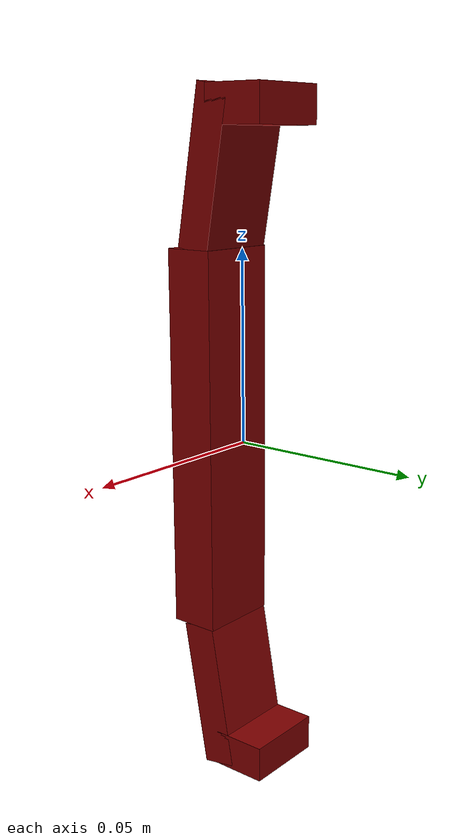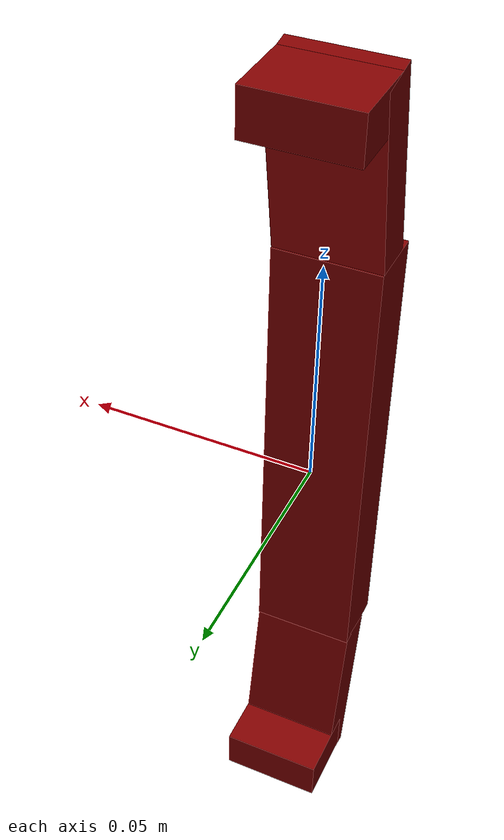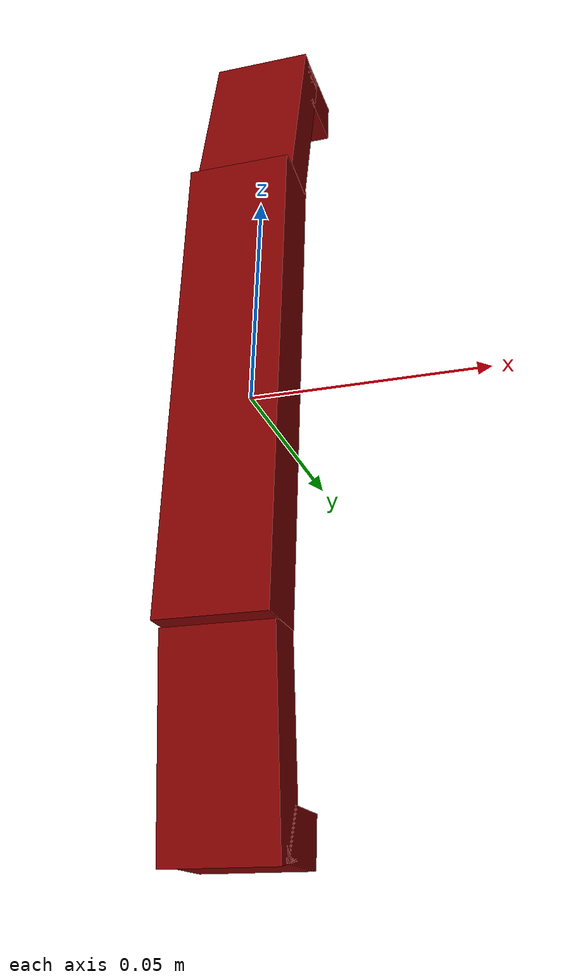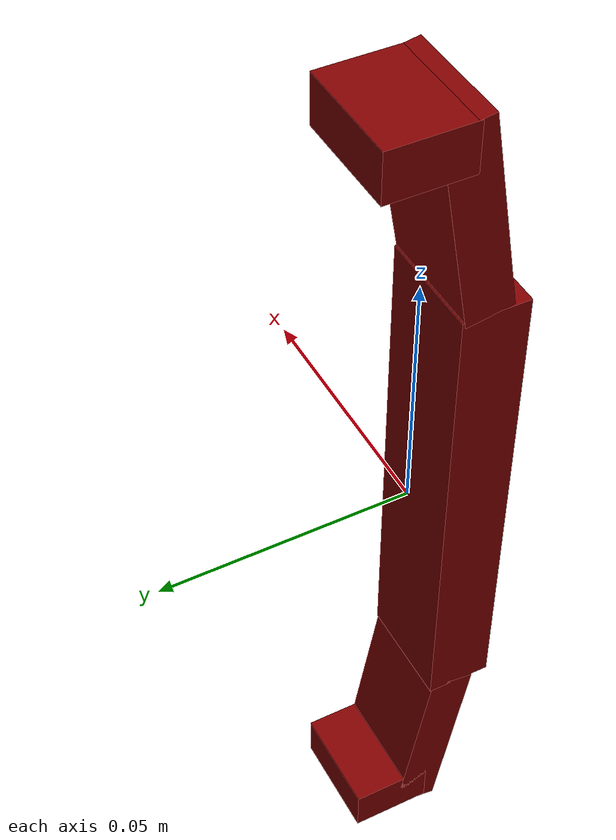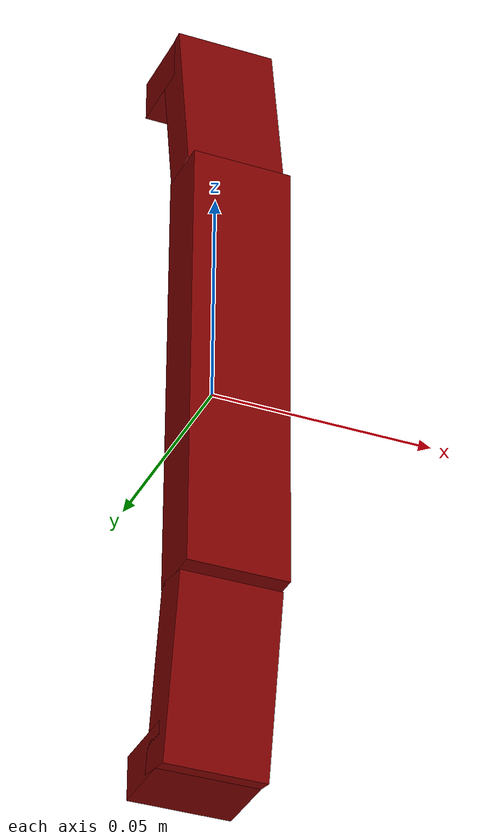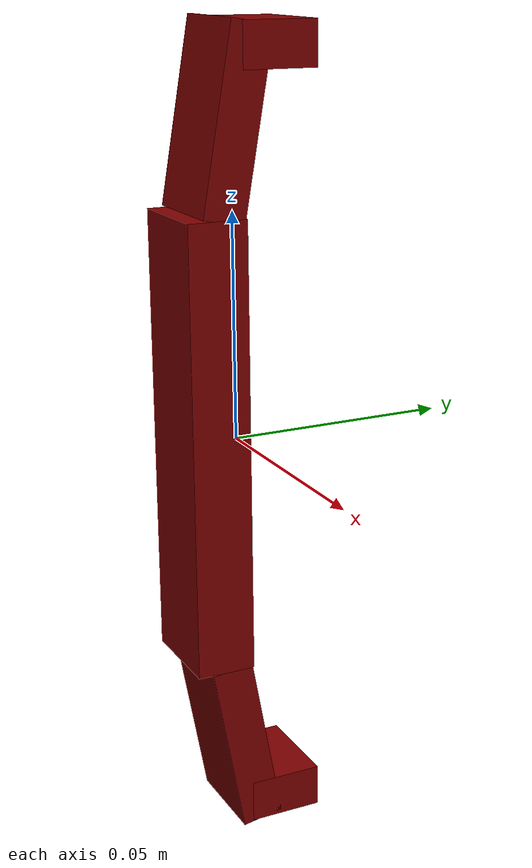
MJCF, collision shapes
<?xml version='1.0' encoding='UTF-8'?>
<mujoco model="model">
  <option timestep="0.002" gravity="0.0 0.0 -9.81"/>
  <compiler angle="radian"/>
  <asset>
    <mesh file="visuals/CabinetHandle034.obj" name="CabinetHandle034_vis"/>
    <texture file="visuals/T_BC001.png" name="tex" type="2d"/>
    <material name="mat" rgba="1 1 1 1.0" texture="tex" shininess="0.10000002384185791" specular="0.33333333333333337"/>
  </asset>
  <default>
    <default class="visual">
      <geom conaffinity="0" contype="0" group="1" type="mesh"/>
    </default>
    <default class="collision">
      <geom group="0" rgba="0.5 0 0 0.5" density="1.0" solref="0.004 1" solimp="0.998 0.998 0.001"/>
    </default>
    <default class="spawn">
      <geom group="0" rgba="1 1 1 0.5" contype="0" conaffinity="0"/>
      <site group="0" rgba="1 1 1 0.5"/>
    </default>
    <default class="region">
      <geom group="1" conaffinity="0" contype="0" rgba="0 1 0 0" mass="0"/>
    </default>
  </default>
  <worldbody>
    <body>
      <body name="object">
        <geom mesh="CabinetHandle034_vis" type="mesh" solimp="0.998 0.998 0.001" solref="0.001 1" friction="0.95 0.3 0.1" class="visual" material="mat"/>
        <geom type="box" pos="0.00012694075121544302 -0.0081240339204669 0.0" size="0.01103002019226551 0.006587193347513676 0.04999999701976776" quat="1.0 0.0 0.0 0.0" class="collision"/>
        <geom type="box" pos="0.00012694075121544302 0.0061347223818302155 0.08415713161230087" size="0.01103002019226551 0.008244373835623264 0.004781731870025396" quat="1.0 0.0 0.0 0.0" class="collision"/>
        <geom type="box" pos="0.00012694075121544302 0.00607963465154171 -0.08401042968034744" size="0.01103002019226551 0.008244373835623264 0.004781731870025396" quat="1.0 0.0 0.0 0.0" class="collision"/>
        <geom type="box" pos="0.00012694075121544302 -0.0032090051099658012 -0.0691131055355072" size="0.01103002019226551 0.0046836300753057 0.01982794515788555" quat="0.9961947202682495 0.08715573698282242 0.0 0.0" class="collision"/>
        <geom type="box" pos="0.00012694075121544302 -0.0032720831222832203 0.06913015246391296" size="0.01103002019226551 0.0046836300753057 0.01982794515788555" quat="0.9961947202682495 -0.08715572953224182 -0.0 0.0" class="collision"/>
        <geom class="region" name="reg_main" type="box" pos="2.3283064365386963e-10 3.259629011154175e-09 0.0" size="0.011200000368058682 0.015200003817677499 0.08969999647140503"/>
      </body>
    </body>
  </worldbody>
  <actuator/>
</mujoco>
